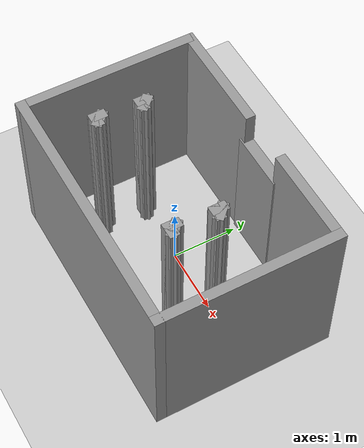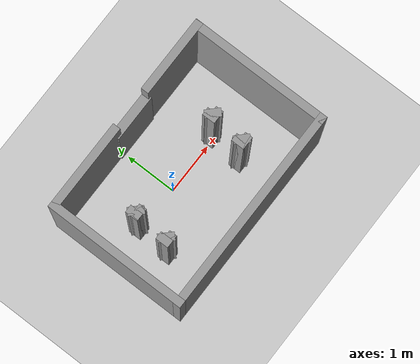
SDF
<sdf version="1.7">
 <world name="default">
  <light name="sun" type="directional">
   <pose>0 0 10 0 -0 0</pose>
   <diffuse>0.8 0.8 0.8 1</diffuse>
   <specular>0.2 0.2 0.2 1</specular>
   <attenuation>
    <range>1000</range>
    <constant>0.9</constant>
    <linear>0.01</linear>
    <quadratic>0.001</quadratic>
   </attenuation>
   <direction>-0.5 0.1 -0.9</direction>
   <spot><inner_angle>0</inner_angle><outer_angle>0</outer_angle><falloff>0</falloff></spot>
  </light>
  <model name="ground_plane">
   <static>1</static>
   <link name="link">
    <collision name="collision">
     <geometry><plane><normal>0 0 1</normal><size>100 100</size></plane></geometry>
     <surface>
      <contact><collide_bitmask>65535</collide_bitmask></contact>
      <friction><ode><mu>100</mu><mu2>50</mu2></ode></friction>
     </surface>
    </collision>
    <visual name="visual">
     <cast_shadows>0</cast_shadows>
     <geometry><plane><normal>0 0 1</normal><size>100 100</size></plane></geometry>
     <material>
      <script><uri>file://media/materials/scripts/gazebo.material</uri><name>Gazebo/Grey</name></script>
     </material>
    </visual>
   </link>
  </model>
  <gravity>0 0 -9.8</gravity>
  <magnetic_field>6e-06 2.3e-05 -4.2e-05</magnetic_field>
  <atmosphere type="adiabatic"/>
  <physics type="ode">
   <max_step_size>0.001</max_step_size>
   <real_time_factor>1</real_time_factor>
   <real_time_update_rate>1000</real_time_update_rate>
  </physics>
  <scene><ambient>0.4 0.4 0.4 1</ambient><background>0.7 0.7 0.7 1</background><shadows>1</shadows></scene>
  <audio><device>default</device></audio>
  <spherical_coordinates>
   <surface_model>EARTH_WGS84</surface_model>
   <latitude_deg>0</latitude_deg>
   <longitude_deg>0</longitude_deg>
   <elevation>0</elevation>
   <heading_deg>0</heading_deg>
  </spherical_coordinates>
  <model name="test">
   <pose>0.25585 1.71858 0 0 -0 0</pose>
   <link name="Door_1">
    <collision name="Door_1_Collision">
     <geometry><box><size>0.9 0.17 2</size></box></geometry>
     <pose>0 0 1 0 -0 0</pose>
    </collision>
    <visual name="Door_1_Visual">
     <pose>0 0 1 0 -0 0</pose>
     <geometry><box><size>0.9 0.17 2</size></box></geometry>
     <material>
      <script><uri>file://media/materials/scripts/gazebo.material</uri><name>Gazebo/Grey</name></script>
     </material>
    </visual>
    <pose>0.103405 -0.571234 0 0 -0 0</pose>
   </link>
   <link name="Wall_10">
    <collision name="Wall_10_Collision">
     <geometry><box><size>0.25 0.15 2.5</size></box></geometry>
     <pose>0 0 1.25 0 -0 0</pose>
    </collision>
    <visual name="Wall_10_Visual">
     <pose>0 0 1.25 0 -0 0</pose>
     <geometry><box><size>0.25 0.15 2.5</size></box></geometry>
     <material>
      <script><uri>file://media/materials/scripts/gazebo.material</uri><name>Gazebo/Grey</name></script>
      <ambient>1 1 1 1</ambient>
     </material>
     <meta><layer>0</layer></meta>
    </visual>
    <pose>-1.1699 -1.72671 0 0 -0 0</pose>
   </link>
   <link name="Wall_11">
    <collision name="Wall_11_Collision">
     <geometry><box><size>0.291421 0.15 2.5</size></box></geometry>
     <pose>0 0 1.25 0 -0 0</pose>
    </collision>
    <visual name="Wall_11_Visual">
     <pose>0 0 1.25 0 -0 0</pose>
     <geometry><box><size>0.291421 0.15 2.5</size></box></geometry>
     <material>
      <script><uri>file://media/materials/scripts/gazebo.material</uri><name>Gazebo/Grey</name></script>
      <ambient>1 1 1 1</ambient>
     </material>
     <meta><layer>0</layer></meta>
    </visual>
    <pose>-1.1699 -1.67671 0 0 -0 2.35619</pose>
   </link>
   <link name="Wall_14">
    <collision name="Wall_14_Collision">
     <geometry><box><size>0.25 0.15 2.5</size></box></geometry>
     <pose>0 0 1.25 0 -0 0</pose>
    </collision>
    <visual name="Wall_14_Visual">
     <pose>0 0 1.25 0 -0 0</pose>
     <geometry><box><size>0.25 0.15 2.5</size></box></geometry>
     <material>
      <script><uri>file://media/materials/scripts/gazebo.material</uri><name>Gazebo/Grey</name></script>
      <ambient>1 1 1 1</ambient>
     </material>
     <meta><layer>0</layer></meta>
    </visual>
    <pose>-1.26427 -2.34238 0 0 -0 -1.5708</pose>
   </link>
   <link name="Wall_15">
    <collision name="Wall_15_Collision">
     <geometry><box><size>0.25 0.15 2.5</size></box></geometry>
     <pose>0 0 1.25 0 -0 0</pose>
    </collision>
    <visual name="Wall_15_Visual">
     <pose>0 0 1.25 0 -0 0</pose>
     <geometry><box><size>0.25 0.15 2.5</size></box></geometry>
     <material>
      <script><uri>file://media/materials/scripts/gazebo.material</uri><name>Gazebo/Grey</name></script>
      <ambient>1 1 1 1</ambient>
     </material>
     <meta><layer>0</layer></meta>
    </visual>
    <pose>-1.21427 -2.39238 0 0 -0 0</pose>
   </link>
   <link name="Wall_16">
    <collision name="Wall_16_Collision">
     <geometry><box><size>0.291421 0.15 2.5</size></box></geometry>
     <pose>0 0 1.25 0 -0 0</pose>
    </collision>
    <visual name="Wall_16_Visual">
     <pose>0 0 1.25 0 -0 0</pose>
     <geometry><box><size>0.291421 0.15 2.5</size></box></geometry>
     <material>
      <script><uri>file://media/materials/scripts/gazebo.material</uri><name>Gazebo/Grey</name></script>
      <ambient>1 1 1 1</ambient>
     </material>
     <meta><layer>0</layer></meta>
    </visual>
    <pose>-1.21427 -2.34238 0 0 -0 2.35619</pose>
   </link>
   <link name="Wall_2">
    <collision name="Wall_2_Collision">
     <geometry><box><size>1.5 0.15 2.5</size></box></geometry>
     <pose>0 0 1.25 0 -0 0</pose>
    </collision>
    <visual name="Wall_2_Visual">
     <pose>0 0 1.25 0 -0 0</pose>
     <geometry><box><size>1.5 0.15 2.5</size></box></geometry>
     <material>
      <script><uri>file://media/materials/scripts/gazebo.material</uri><name>Gazebo/Grey</name></script>
      <ambient>1 1 1 1</ambient>
     </material>
     <meta><layer>0</layer></meta>
    </visual>
    <pose>1.25 -0.558227 0 0 -0 0</pose>
   </link>
   <link name="Wall_20">
    <collision name="Wall_20_Collision">
     <geometry><box><size>0.25 0.15 2.5</size></box></geometry>
     <pose>0 0 1.25 0 -0 0</pose>
    </collision>
    <visual name="Wall_20_Visual">
     <pose>0 0 1.25 0 -0 0</pose>
     <geometry><box><size>0.25 0.15 2.5</size></box></geometry>
     <material>
      <script><uri>file://media/materials/scripts/gazebo.material</uri><name>Gazebo/Grey</name></script>
      <ambient>1 1 1 1</ambient>
     </material>
     <meta><layer>0</layer></meta>
    </visual>
    <pose>0.84684 -1.68305 0 0 -0 -1.5708</pose>
   </link>
   <link name="Wall_21">
    <collision name="Wall_21_Collision">
     <geometry><box><size>0.25 0.15 2.5</size></box></geometry>
     <pose>0 0 1.25 0 -0 0</pose>
    </collision>
    <visual name="Wall_21_Visual">
     <pose>0 0 1.25 0 -0 0</pose>
     <geometry><box><size>0.25 0.15 2.5</size></box></geometry>
     <material>
      <script><uri>file://media/materials/scripts/gazebo.material</uri><name>Gazebo/Grey</name></script>
      <ambient>1 1 1 1</ambient>
     </material>
     <meta><layer>0</layer></meta>
    </visual>
    <pose>0.89684 -1.73305 0 0 -0 0</pose>
   </link>
   <link name="Wall_22">
    <collision name="Wall_22_Collision">
     <geometry><box><size>0.291421 0.15 2.5</size></box></geometry>
     <pose>0 0 1.25 0 -0 0</pose>
    </collision>
    <visual name="Wall_22_Visual">
     <pose>0 0 1.25 0 -0 0</pose>
     <geometry><box><size>0.291421 0.15 2.5</size></box></geometry>
     <material>
      <script><uri>file://media/materials/scripts/gazebo.material</uri><name>Gazebo/Grey</name></script>
      <ambient>1 1 1 1</ambient>
     </material>
     <meta><layer>0</layer></meta>
    </visual>
    <pose>0.89684 -1.68305 0 0 -0 2.35619</pose>
   </link>
   <link name="Wall_3">
    <collision name="Wall_3_Collision">
     <geometry><box><size>2.75 0.15 2.5</size></box></geometry>
     <pose>0 0 1.25 0 -0 0</pose>
    </collision>
    <visual name="Wall_3_Visual">
     <pose>0 0 1.25 0 -0 0</pose>
     <geometry><box><size>2.75 0.15 2.5</size></box></geometry>
     <material>
      <script><uri>file://media/materials/scripts/gazebo.material</uri><name>Gazebo/Grey</name></script>
      <ambient>1 1 1 1</ambient>
     </material>
     <meta><layer>0</layer></meta>
    </visual>
    <pose>1.925 -1.85823 0 0 -0 -1.5708</pose>
   </link>
   <link name="Wall_30">
    <collision name="Wall_30_Collision">
     <geometry><box><size>0.25 0.15 2.5</size></box></geometry>
     <pose>0 0 1.25 0 -0 0</pose>
    </collision>
    <visual name="Wall_30_Visual">
     <pose>0 0 1.25 0 -0 0</pose>
     <geometry><box><size>0.25 0.15 2.5</size></box></geometry>
     <material>
      <script><uri>file://media/materials/scripts/gazebo.material</uri><name>Gazebo/Grey</name></script>
      <ambient>1 1 1 1</ambient>
     </material>
     <meta><layer>0</layer></meta>
    </visual>
    <pose>0.796122 -2.3297 0 0 -0 -1.5708</pose>
   </link>
   <link name="Wall_31">
    <collision name="Wall_31_Collision">
     <geometry><box><size>0.25 0.15 2.5</size></box></geometry>
     <pose>0 0 1.25 0 -0 0</pose>
    </collision>
    <visual name="Wall_31_Visual">
     <pose>0 0 1.25 0 -0 0</pose>
     <geometry><box><size>0.25 0.15 2.5</size></box></geometry>
     <material>
      <script><uri>file://media/materials/scripts/gazebo.material</uri><name>Gazebo/Grey</name></script>
      <ambient>1 1 1 1</ambient>
     </material>
     <meta><layer>0</layer></meta>
    </visual>
    <pose>0.846122 -2.3797 0 0 -0 0</pose>
   </link>
   <link name="Wall_32">
    <collision name="Wall_32_Collision">
     <geometry><box><size>0.291421 0.15 2.5</size></box></geometry>
     <pose>0 0 1.25 0 -0 0</pose>
    </collision>
    <visual name="Wall_32_Visual">
     <pose>0 0 1.25 0 -0 0</pose>
     <geometry><box><size>0.291421 0.15 2.5</size></box></geometry>
     <material>
      <script><uri>file://media/materials/scripts/gazebo.material</uri><name>Gazebo/Grey</name></script>
      <ambient>1 1 1 1</ambient>
     </material>
     <meta><layer>0</layer></meta>
    </visual>
    <pose>0.846122 -2.3297 0 0 -0 2.35619</pose>
   </link>
   <link name="Wall_4">
    <collision name="Wall_4_Collision">
     <geometry><box><size>4 0.15 2.5</size></box></geometry>
     <pose>0 0 1.25 0 -0 0</pose>
    </collision>
    <visual name="Wall_4_Visual">
     <pose>0 0 1.25 0 -0 0</pose>
     <geometry><box><size>4 0.15 2.5</size></box></geometry>
     <material>
      <script><uri>file://media/materials/scripts/gazebo.material</uri><name>Gazebo/Grey</name></script>
      <ambient>1 1 1 1</ambient>
     </material>
     <meta><layer>0</layer></meta>
    </visual>
    <pose>0 -3.15823 0 0 -0 3.14159</pose>
   </link>
   <link name="Wall_5">
    <collision name="Wall_5_Collision">
     <geometry><box><size>2.75 0.15 2.5</size></box></geometry>
     <pose>0 0 1.25 0 -0 0</pose>
    </collision>
    <visual name="Wall_5_Visual">
     <pose>0 0 1.25 0 -0 0</pose>
     <geometry><box><size>2.75 0.15 2.5</size></box></geometry>
     <material>
      <script><uri>file://media/materials/scripts/gazebo.material</uri><name>Gazebo/Grey</name></script>
      <ambient>1 1 1 1</ambient>
     </material>
     <meta><layer>0</layer></meta>
    </visual>
    <pose>-1.925 -1.85823 0 0 -0 1.5708</pose>
   </link>
   <link name="Wall_6">
    <collision name="Wall_6_Collision">
     <geometry><box><size>1.75 0.15 2.5</size></box></geometry>
     <pose>0 0 1.25 0 -0 0</pose>
    </collision>
    <visual name="Wall_6_Visual">
     <pose>0 0 1.25 0 -0 0</pose>
     <geometry><box><size>1.75 0.15 2.5</size></box></geometry>
     <material>
      <script><uri>file://media/materials/scripts/gazebo.material</uri><name>Gazebo/Grey</name></script>
      <ambient>1 1 1 1</ambient>
     </material>
     <meta><layer>0</layer></meta>
    </visual>
    <pose>-1.125 -0.558227 0 0 -0 0</pose>
   </link>
   <link name="Wall_9">
    <collision name="Wall_9_Collision">
     <geometry><box><size>0.25 0.15 2.5</size></box></geometry>
     <pose>0 0 1.25 0 -0 0</pose>
    </collision>
    <visual name="Wall_9_Visual">
     <pose>0 0 1.25 0 -0 0</pose>
     <geometry><box><size>0.25 0.15 2.5</size></box></geometry>
     <material>
      <script><uri>file://media/materials/scripts/gazebo.material</uri><name>Gazebo/Grey</name></script>
      <ambient>1 1 1 1</ambient>
     </material>
     <meta><layer>0</layer></meta>
    </visual>
    <pose>-1.2199 -1.67671 0 0 -0 -1.5708</pose>
   </link>
   <static>1</static>
  </model>
 </world>
</sdf>
